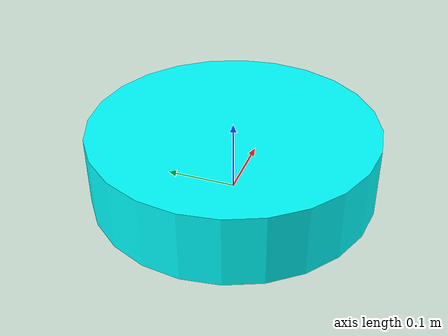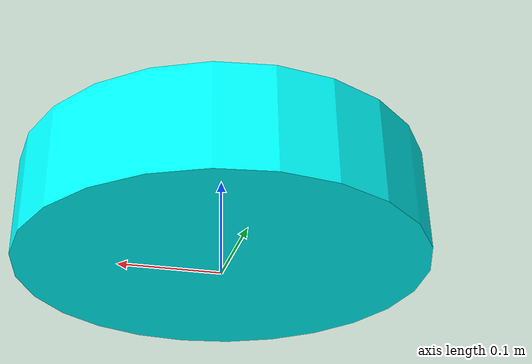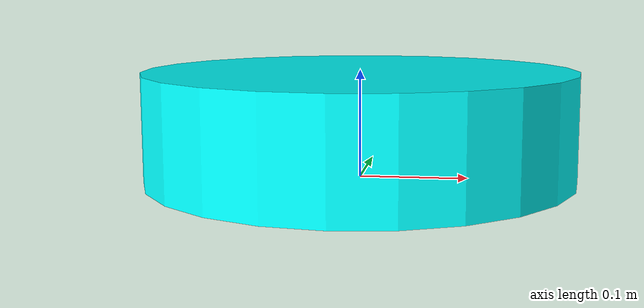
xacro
<?xml version="1.0"?>
<robot xmlns:sensor="http://playerstage.sourceforge.net/gazebo/xmlschema/#sensor"
       xmlns:controller="http://playerstage.sourceforge.net/gazebo/xmlschema/#controller"
       xmlns:interface="http://playerstage.sourceforge.net/gazebo/xmlschema/#interface"
       xmlns:xacro="http://playerstage.sourceforge.net/gazebo/xmlschema/#interface"
       name="Simple" >

  <xacro:include filename="aero_description/common_urdf/gazebo.xacro" />

  <link name="base_link"/>
  <link name="base_laser_link" />

  <link name="main"> <!-- main body -->
    <visual>
      <origin xyz="0 0 0" rpy="0 0 0" />
      <geometry>
        <cylinder radius="0.2" length="0.1"/>
      </geometry>
      <material name="Cyan">
        <color rgba="0 1.0 1.0 1.0"/>
      </material>
    </visual>
    <collision>
      <origin xyz="0 0 0" rpy="0 0 0"/>
      <geometry>
        <cylinder radius="0.2" length="0.1"/>
      </geometry>
    </collision>
    <inertial>
      <mass value="1.0" />
      <origin xyz="0 0 0" rpy="0 0 0"/>
      <inertia ixx="0.1" ixy="0" ixz="0" iyy="0.1" iyz="0" izz="0.1"/>
    </inertial>
  </link>

  <joint name="fixed_base_link_to_main" type="fixed">
    <parent link="base_link"/>
    <child  link="main"/>
    <origin xyz="0.0 0.0 0.05" rpy="0 0 0"/>
  </joint>

  <joint name="fixed_main_to_baselaser_link" type="fixed">
    <parent link="main"/>
    <child  link="base_laser_link"/>
    <origin xyz="0.2 0.0 0.05" rpy="0 0 0"/>
  </joint>
  <!-- laser -->
  <xacro:gazebo_laser_sensor link_name="base_laser_link"
                             frame_name="base_laser_link" />

  <!-- mobile base -->
  <xacro:gazebo_base_controller base_frame="base_link" />

</robot>
